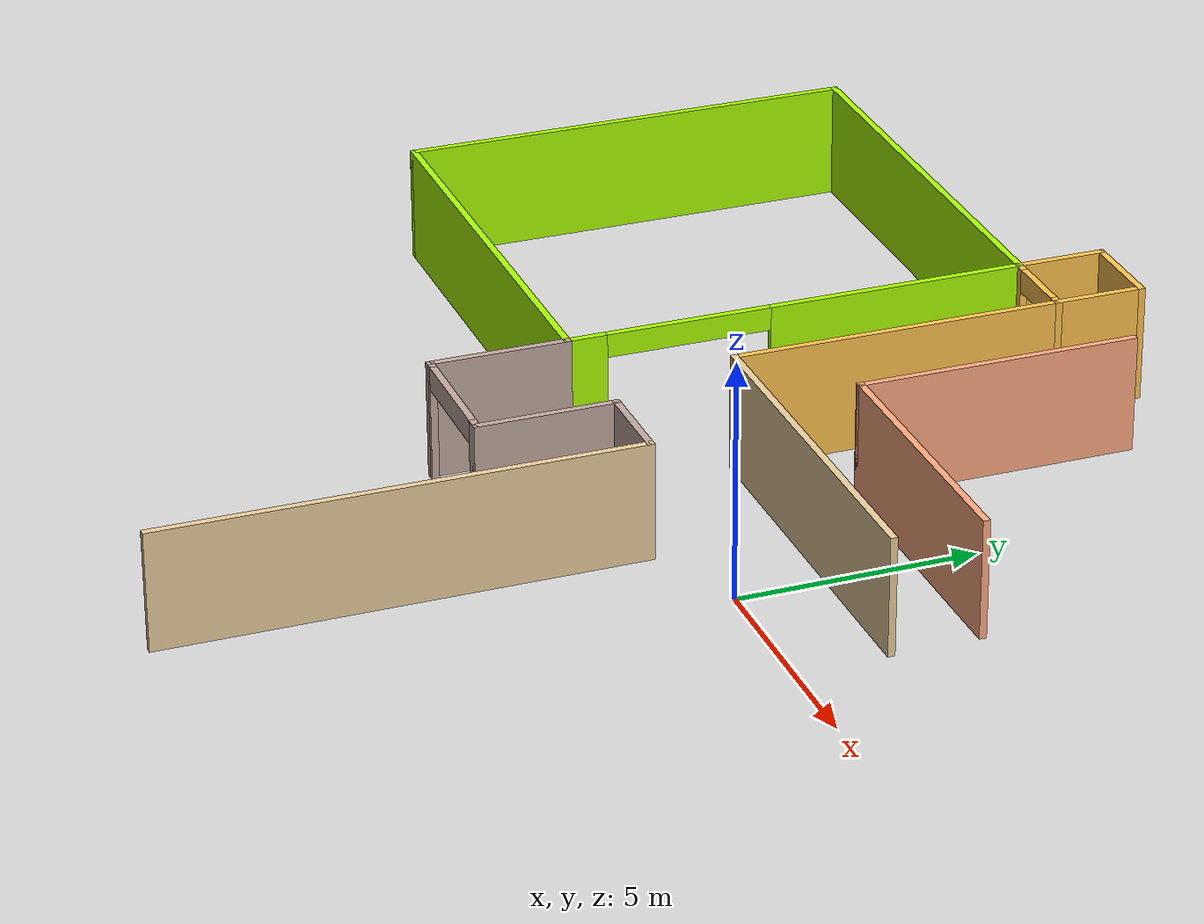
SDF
<sdf version="1.6">
 <model name="myhouse">
  <link name="Wall_24">
   <pose>-2.925 6.7 0 0 0 -1.5708</pose>
   <visual name="Wall_24_Visual">
    <pose>0 0 1.25 0 -0 0</pose>
    <geometry><box><size>6 0.15 2.5</size></box></geometry>
    <material>
     <script><uri>file://media/materials/scripts/gazebo.material</uri><name>Gazebo/Grey</name></script>
     <ambient>1 0.666667 0.498039 1</ambient>
     <diffuse>0.7 0.7 0.7 1</diffuse>
     <specular>0.01 0.01 0.01 1</specular>
     <emissive>0 0 0 1</emissive>
    </material>
   </visual>
   <collision name="Wall_24_Collision">
    <pose>0 0 1.25 0 -0 0</pose>
    <geometry><box><size>6 0.15 2.5</size></box></geometry>
    <surface>
     <friction>
      <ode><mu>1</mu><mu2>1</mu2><fdir1>0 0 0</fdir1><slip1>0</slip1><slip2>0</slip2></ode>
      <torsional>
       <coefficient>1</coefficient>
       <patch_radius>0</patch_radius>
       <surface_radius>0</surface_radius>
       <use_patch_radius>1</use_patch_radius>
       <ode><slip>0</slip></ode>
      </torsional>
     </friction>
     <bounce><restitution_coefficient>0</restitution_coefficient><threshold>1e+06</threshold></bounce>
     <contact>
      <collide_without_contact>0</collide_without_contact>
      <collide_without_contact_bitmask>1</collide_without_contact_bitmask>
      <collide_bitmask>1</collide_bitmask>
      <ode>
       <soft_cfm>0</soft_cfm>
       <soft_erp>0.2</soft_erp>
       <kp>1e+13</kp>
       <kd>1</kd>
       <max_vel>0.01</max_vel>
       <min_depth>0</min_depth>
      </ode>
      <bullet>
       <split_impulse>1</split_impulse>
       <split_impulse_penetration_threshold>-0.01</split_impulse_penetration_threshold>
       <soft_cfm>0</soft_cfm>
       <soft_erp>0.2</soft_erp>
       <kp>1e+13</kp>
       <kd>1</kd>
      </bullet>
     </contact>
    </surface>
   </collision>
  </link>
  <link name="Wall_25">
   <pose>0 3.775 0 0 -0 0</pose>
   <visual name="Wall_25_Visual">
    <pose>0 0 1.25 0 -0 0</pose>
    <geometry><box><size>6 0.15 2.5</size></box></geometry>
    <material>
     <script><uri>file://media/materials/scripts/gazebo.material</uri><name>Gazebo/Grey</name></script>
     <ambient>1 0.666667 0.498039 1</ambient>
     <diffuse>0.7 0.7 0.7 1</diffuse>
     <specular>0.01 0.01 0.01 1</specular>
     <emissive>0 0 0 1</emissive>
    </material>
   </visual>
   <collision name="Wall_25_Collision">
    <pose>0 0 1.25 0 -0 0</pose>
    <geometry><box><size>6 0.15 2.5</size></box></geometry>
    <surface>
     <friction>
      <ode><mu>1</mu><mu2>1</mu2><fdir1>0 0 0</fdir1><slip1>0</slip1><slip2>0</slip2></ode>
      <torsional>
       <coefficient>1</coefficient>
       <patch_radius>0</patch_radius>
       <surface_radius>0</surface_radius>
       <use_patch_radius>1</use_patch_radius>
       <ode><slip>0</slip></ode>
      </torsional>
     </friction>
     <bounce><restitution_coefficient>0</restitution_coefficient><threshold>1e+06</threshold></bounce>
     <contact>
      <collide_without_contact>0</collide_without_contact>
      <collide_without_contact_bitmask>1</collide_without_contact_bitmask>
      <collide_bitmask>1</collide_bitmask>
      <ode>
       <soft_cfm>0</soft_cfm>
       <soft_erp>0.2</soft_erp>
       <kp>1e+13</kp>
       <kd>1</kd>
       <max_vel>0.01</max_vel>
       <min_depth>0</min_depth>
      </ode>
      <bullet>
       <split_impulse>1</split_impulse>
       <split_impulse_penetration_threshold>-0.01</split_impulse_penetration_threshold>
       <soft_cfm>0</soft_cfm>
       <soft_erp>0.2</soft_erp>
       <kp>1e+13</kp>
       <kd>1</kd>
      </bullet>
     </contact>
    </surface>
   </collision>
  </link>
  <link name="Wall_27">
   <pose>-1 1.925 0 0 -0 3.14159</pose>
   <visual name="Wall_27_Visual">
    <pose>0 0 1.25 0 -0 0</pose>
    <geometry><box><size>8 0.15 2.5</size></box></geometry>
    <material>
     <script><uri>file://media/materials/scripts/gazebo.material</uri><name>Gazebo/Grey</name></script>
     <ambient>0.921569 0.807843 0.615686 1</ambient>
     <diffuse>0.7 0.7 0.7 1</diffuse>
     <specular>0.01 0.01 0.01 1</specular>
     <emissive>0 0 0 1</emissive>
    </material>
   </visual>
   <collision name="Wall_27_Collision">
    <pose>0 0 1.25 0 -0 0</pose>
    <geometry><box><size>8 0.15 2.5</size></box></geometry>
    <surface>
     <friction>
      <ode><mu>1</mu><mu2>1</mu2><fdir1>0 0 0</fdir1><slip1>0</slip1><slip2>0</slip2></ode>
      <torsional>
       <coefficient>1</coefficient>
       <patch_radius>0</patch_radius>
       <surface_radius>0</surface_radius>
       <use_patch_radius>1</use_patch_radius>
       <ode><slip>0</slip></ode>
      </torsional>
     </friction>
     <bounce><restitution_coefficient>0</restitution_coefficient><threshold>1e+06</threshold></bounce>
     <contact>
      <collide_without_contact>0</collide_without_contact>
      <collide_without_contact_bitmask>1</collide_without_contact_bitmask>
      <collide_bitmask>1</collide_bitmask>
      <ode>
       <soft_cfm>0</soft_cfm>
       <soft_erp>0.2</soft_erp>
       <kp>1e+13</kp>
       <kd>1</kd>
       <max_vel>0.01</max_vel>
       <min_depth>0</min_depth>
      </ode>
      <bullet>
       <split_impulse>1</split_impulse>
       <split_impulse_penetration_threshold>-0.01</split_impulse_penetration_threshold>
       <soft_cfm>0</soft_cfm>
       <soft_erp>0.2</soft_erp>
       <kp>1e+13</kp>
       <kd>1</kd>
      </bullet>
     </contact>
    </surface>
   </collision>
  </link>
  <link name="Wall_28">
   <pose>-4.925 6.35 0 0 -0 1.5708</pose>
   <visual name="Wall_28_Visual">
    <pose>0 0 1.25 0 -0 0</pose>
    <geometry><box><size>9 0.15 2.5</size></box></geometry>
    <material>
     <script><uri>file://media/materials/scripts/gazebo.material</uri><name>Gazebo/Grey</name></script>
     <ambient>1 0.764706 0.305882 1</ambient>
     <diffuse>0.7 0.7 0.7 1</diffuse>
     <specular>0.01 0.01 0.01 1</specular>
     <emissive>0 0 0 1</emissive>
    </material>
   </visual>
   <collision name="Wall_28_Collision">
    <pose>0 0 1.25 0 -0 0</pose>
    <geometry><box><size>9 0.15 2.5</size></box></geometry>
    <surface>
     <friction>
      <ode><mu>1</mu><mu2>1</mu2><fdir1>0 0 0</fdir1><slip1>0</slip1><slip2>0</slip2></ode>
      <torsional>
       <coefficient>1</coefficient>
       <patch_radius>0</patch_radius>
       <surface_radius>0</surface_radius>
       <use_patch_radius>1</use_patch_radius>
       <ode><slip>0</slip></ode>
      </torsional>
     </friction>
     <bounce><restitution_coefficient>0</restitution_coefficient><threshold>1e+06</threshold></bounce>
     <contact>
      <collide_without_contact>0</collide_without_contact>
      <collide_without_contact_bitmask>1</collide_without_contact_bitmask>
      <collide_bitmask>1</collide_bitmask>
      <ode>
       <soft_cfm>0</soft_cfm>
       <soft_erp>0.2</soft_erp>
       <kp>1e+13</kp>
       <kd>1</kd>
       <max_vel>0.01</max_vel>
       <min_depth>0</min_depth>
      </ode>
      <bullet>
       <split_impulse>1</split_impulse>
       <split_impulse_penetration_threshold>-0.01</split_impulse_penetration_threshold>
       <soft_cfm>0</soft_cfm>
       <soft_erp>0.2</soft_erp>
       <kp>1e+13</kp>
       <kd>1</kd>
      </bullet>
     </contact>
    </surface>
   </collision>
  </link>
  <link name="Wall_29">
   <pose>-5.85 10.775 0 0 -0 3.14159</pose>
   <visual name="Wall_29_Visual">
    <pose>0 0 1.25 0 -0 0</pose>
    <geometry><box><size>2 0.15 2.5</size></box></geometry>
    <material>
     <script><uri>file://media/materials/scripts/gazebo.material</uri><name>Gazebo/Grey</name></script>
     <ambient>1 0.764706 0.305882 1</ambient>
     <diffuse>0.7 0.7 0.7 1</diffuse>
     <specular>0.01 0.01 0.01 1</specular>
     <emissive>0 0 0 1</emissive>
    </material>
   </visual>
   <collision name="Wall_29_Collision">
    <pose>0 0 1.25 0 -0 0</pose>
    <geometry><box><size>2 0.15 2.5</size></box></geometry>
    <surface>
     <friction>
      <ode><mu>1</mu><mu2>1</mu2><fdir1>0 0 0</fdir1><slip1>0</slip1><slip2>0</slip2></ode>
      <torsional>
       <coefficient>1</coefficient>
       <patch_radius>0</patch_radius>
       <surface_radius>0</surface_radius>
       <use_patch_radius>1</use_patch_radius>
       <ode><slip>0</slip></ode>
      </torsional>
     </friction>
     <bounce><restitution_coefficient>0</restitution_coefficient><threshold>1e+06</threshold></bounce>
     <contact>
      <collide_without_contact>0</collide_without_contact>
      <collide_without_contact_bitmask>1</collide_without_contact_bitmask>
      <collide_bitmask>1</collide_bitmask>
      <ode>
       <soft_cfm>0</soft_cfm>
       <soft_erp>0.2</soft_erp>
       <kp>1e+13</kp>
       <kd>1</kd>
       <max_vel>0.01</max_vel>
       <min_depth>0</min_depth>
      </ode>
      <bullet>
       <split_impulse>1</split_impulse>
       <split_impulse_penetration_threshold>-0.01</split_impulse_penetration_threshold>
       <soft_cfm>0</soft_cfm>
       <soft_erp>0.2</soft_erp>
       <kp>1e+13</kp>
       <kd>1</kd>
      </bullet>
     </contact>
    </surface>
   </collision>
  </link>
  <link name="Wall_30">
   <pose>-6.775 9.85 0 0 0 -1.5708</pose>
   <visual name="Wall_30_Visual">
    <pose>0 0 1.25 0 -0 0</pose>
    <geometry><box><size>2 0.15 2.5</size></box></geometry>
    <material>
     <script><uri>file://media/materials/scripts/gazebo.material</uri><name>Gazebo/Grey</name></script>
     <ambient>1 0.764706 0.305882 1</ambient>
     <diffuse>0.7 0.7 0.7 1</diffuse>
     <specular>0.01 0.01 0.01 1</specular>
     <emissive>0 0 0 1</emissive>
    </material>
   </visual>
   <collision name="Wall_30_Collision">
    <pose>0 0 1.25 0 -0 0</pose>
    <geometry><box><size>2 0.15 2.5</size></box></geometry>
    <surface>
     <friction>
      <ode><mu>1</mu><mu2>1</mu2><fdir1>0 0 0</fdir1><slip1>0</slip1><slip2>0</slip2></ode>
      <torsional>
       <coefficient>1</coefficient>
       <patch_radius>0</patch_radius>
       <surface_radius>0</surface_radius>
       <use_patch_radius>1</use_patch_radius>
       <ode><slip>0</slip></ode>
      </torsional>
     </friction>
     <bounce><restitution_coefficient>0</restitution_coefficient><threshold>1e+06</threshold></bounce>
     <contact>
      <collide_without_contact>0</collide_without_contact>
      <collide_without_contact_bitmask>1</collide_without_contact_bitmask>
      <collide_bitmask>1</collide_bitmask>
      <ode>
       <soft_cfm>0</soft_cfm>
       <soft_erp>0.2</soft_erp>
       <kp>1e+13</kp>
       <kd>1</kd>
       <max_vel>0.01</max_vel>
       <min_depth>0</min_depth>
      </ode>
      <bullet>
       <split_impulse>1</split_impulse>
       <split_impulse_penetration_threshold>-0.01</split_impulse_penetration_threshold>
       <soft_cfm>0</soft_cfm>
       <soft_erp>0.2</soft_erp>
       <kp>1e+13</kp>
       <kd>1</kd>
      </bullet>
     </contact>
    </surface>
   </collision>
  </link>
  <link name="Wall_31">
   <pose>-11.7 8.925 0 0 -0 3.14159</pose>
   <visual name="Wall_31_Visual">
    <pose>0 0 1.25 0 -0 0</pose>
    <geometry><box><size>10 0.15 2.5</size></box></geometry>
    <material>
     <script><uri>file://media/materials/scripts/gazebo.material</uri><name>Gazebo/Grey</name></script>
     <ambient>0.666667 1 0 1</ambient>
     <diffuse>0.7 0.7 0.7 1</diffuse>
     <specular>0.01 0.01 0.01 1</specular>
     <emissive>0 0 0 1</emissive>
    </material>
   </visual>
   <collision name="Wall_31_Collision">
    <pose>0 0 1.25 0 -0 0</pose>
    <geometry><box><size>10 0.15 2.5</size></box></geometry>
    <surface>
     <friction>
      <ode><mu>1</mu><mu2>1</mu2><fdir1>0 0 0</fdir1><slip1>0</slip1><slip2>0</slip2></ode>
      <torsional>
       <coefficient>1</coefficient>
       <patch_radius>0</patch_radius>
       <surface_radius>0</surface_radius>
       <use_patch_radius>1</use_patch_radius>
       <ode><slip>0</slip></ode>
      </torsional>
     </friction>
     <bounce><restitution_coefficient>0</restitution_coefficient><threshold>1e+06</threshold></bounce>
     <contact>
      <collide_without_contact>0</collide_without_contact>
      <collide_without_contact_bitmask>1</collide_without_contact_bitmask>
      <collide_bitmask>1</collide_bitmask>
      <ode>
       <soft_cfm>0</soft_cfm>
       <soft_erp>0.2</soft_erp>
       <kp>1e+13</kp>
       <kd>1</kd>
       <max_vel>0.01</max_vel>
       <min_depth>0</min_depth>
      </ode>
      <bullet>
       <split_impulse>1</split_impulse>
       <split_impulse_penetration_threshold>-0.01</split_impulse_penetration_threshold>
       <soft_cfm>0</soft_cfm>
       <soft_erp>0.2</soft_erp>
       <kp>1e+13</kp>
       <kd>1</kd>
      </bullet>
     </contact>
    </surface>
   </collision>
  </link>
  <link name="Wall_32">
   <pose>-16.625 4 0 0 0 -1.5708</pose>
   <visual name="Wall_32_Visual">
    <pose>0 0 1.25 0 -0 0</pose>
    <geometry><box><size>10 0.15 2.5</size></box></geometry>
    <material>
     <script><uri>file://media/materials/scripts/gazebo.material</uri><name>Gazebo/Grey</name></script>
     <ambient>0.666667 1 0 1</ambient>
     <diffuse>0.7 0.7 0.7 1</diffuse>
     <specular>0.01 0.01 0.01 1</specular>
     <emissive>0 0 0 1</emissive>
    </material>
   </visual>
   <collision name="Wall_32_Collision">
    <pose>0 0 1.25 0 -0 0</pose>
    <geometry><box><size>10 0.15 2.5</size></box></geometry>
    <surface>
     <friction>
      <ode><mu>1</mu><mu2>1</mu2><fdir1>0 0 0</fdir1><slip1>0</slip1><slip2>0</slip2></ode>
      <torsional>
       <coefficient>1</coefficient>
       <patch_radius>0</patch_radius>
       <surface_radius>0</surface_radius>
       <use_patch_radius>1</use_patch_radius>
       <ode><slip>0</slip></ode>
      </torsional>
     </friction>
     <bounce><restitution_coefficient>0</restitution_coefficient><threshold>1e+06</threshold></bounce>
     <contact>
      <collide_without_contact>0</collide_without_contact>
      <collide_without_contact_bitmask>1</collide_without_contact_bitmask>
      <collide_bitmask>1</collide_bitmask>
      <ode>
       <soft_cfm>0</soft_cfm>
       <soft_erp>0.2</soft_erp>
       <kp>1e+13</kp>
       <kd>1</kd>
       <max_vel>0.01</max_vel>
       <min_depth>0</min_depth>
      </ode>
      <bullet>
       <split_impulse>1</split_impulse>
       <split_impulse_penetration_threshold>-0.01</split_impulse_penetration_threshold>
       <soft_cfm>0</soft_cfm>
       <soft_erp>0.2</soft_erp>
       <kp>1e+13</kp>
       <kd>1</kd>
      </bullet>
     </contact>
    </surface>
   </collision>
  </link>
  <link name="Wall_33">
   <pose>-11.7 -0.924999 0 0 -0 0</pose>
   <visual name="Wall_33_Visual">
    <pose>0 0 1.25 0 -0 0</pose>
    <geometry><box><size>10 0.15 2.5</size></box></geometry>
    <material>
     <script><uri>file://media/materials/scripts/gazebo.material</uri><name>Gazebo/Grey</name></script>
     <ambient>0.666667 1 0 1</ambient>
     <diffuse>0.7 0.7 0.7 1</diffuse>
     <specular>0.01 0.01 0.01 1</specular>
     <emissive>0 0 0 1</emissive>
    </material>
   </visual>
   <collision name="Wall_33_Collision">
    <pose>0 0 1.25 0 -0 0</pose>
    <geometry><box><size>10 0.15 2.5</size></box></geometry>
    <surface>
     <friction>
      <ode><mu>1</mu><mu2>1</mu2><fdir1>0 0 0</fdir1><slip1>0</slip1><slip2>0</slip2></ode>
      <torsional>
       <coefficient>1</coefficient>
       <patch_radius>0</patch_radius>
       <surface_radius>0</surface_radius>
       <use_patch_radius>1</use_patch_radius>
       <ode><slip>0</slip></ode>
      </torsional>
     </friction>
     <bounce><restitution_coefficient>0</restitution_coefficient><threshold>1e+06</threshold></bounce>
     <contact>
      <collide_without_contact>0</collide_without_contact>
      <collide_without_contact_bitmask>1</collide_without_contact_bitmask>
      <collide_bitmask>1</collide_bitmask>
      <ode>
       <soft_cfm>0</soft_cfm>
       <soft_erp>0.2</soft_erp>
       <kp>1e+13</kp>
       <kd>1</kd>
       <max_vel>0.01</max_vel>
       <min_depth>0</min_depth>
      </ode>
      <bullet>
       <split_impulse>1</split_impulse>
       <split_impulse_penetration_threshold>-0.01</split_impulse_penetration_threshold>
       <soft_cfm>0</soft_cfm>
       <soft_erp>0.2</soft_erp>
       <kp>1e+13</kp>
       <kd>1</kd>
      </bullet>
     </contact>
    </surface>
   </collision>
  </link>
  <link name="Wall_34">
   <pose>-6.775 -2.35 0 0 0 -1.5708</pose>
   <visual name="Wall_34_Visual">
    <pose>0 0 1.25 0 -0 0</pose>
    <geometry><box><size>3 0.15 2.5</size></box></geometry>
    <material>
     <script><uri>file://media/materials/scripts/gazebo.material</uri><name>Gazebo/Grey</name></script>
     <ambient>0.760784 0.662745 0.627451 1</ambient>
     <diffuse>0.7 0.7 0.7 1</diffuse>
     <specular>0.01 0.01 0.01 1</specular>
     <emissive>0 0 0 1</emissive>
    </material>
   </visual>
   <collision name="Wall_34_Collision">
    <pose>0 0 1.25 0 -0 0</pose>
    <geometry><box><size>3 0.15 2.5</size></box></geometry>
    <surface>
     <friction>
      <ode><mu>1</mu><mu2>1</mu2><fdir1>0 0 0</fdir1><slip1>0</slip1><slip2>0</slip2></ode>
      <torsional>
       <coefficient>1</coefficient>
       <patch_radius>0</patch_radius>
       <surface_radius>0</surface_radius>
       <use_patch_radius>1</use_patch_radius>
       <ode><slip>0</slip></ode>
      </torsional>
     </friction>
     <bounce><restitution_coefficient>0</restitution_coefficient><threshold>1e+06</threshold></bounce>
     <contact>
      <collide_without_contact>0</collide_without_contact>
      <collide_without_contact_bitmask>1</collide_without_contact_bitmask>
      <collide_bitmask>1</collide_bitmask>
      <ode>
       <soft_cfm>0</soft_cfm>
       <soft_erp>0.2</soft_erp>
       <kp>1e+13</kp>
       <kd>1</kd>
       <max_vel>0.01</max_vel>
       <min_depth>0</min_depth>
      </ode>
      <bullet>
       <split_impulse>1</split_impulse>
       <split_impulse_penetration_threshold>-0.01</split_impulse_penetration_threshold>
       <soft_cfm>0</soft_cfm>
       <soft_erp>0.2</soft_erp>
       <kp>1e+13</kp>
       <kd>1</kd>
      </bullet>
     </contact>
    </surface>
   </collision>
  </link>
  <link name="Wall_35">
   <pose>-5.35 -3.775 0 0 -0 0</pose>
   <visual name="Wall_35_Visual_0">
    <pose>-1.3701 0 1.25 0 -0 0</pose>
    <geometry><box><size>0.259804 0.15 2.5</size></box></geometry>
    <material>
     <script><uri>file://media/materials/scripts/gazebo.material</uri><name>Gazebo/Grey</name></script>
     <ambient>0.760784 0.662745 0.627451 1</ambient>
     <diffuse>0.7 0.7 0.7 1</diffuse>
     <specular>0.01 0.01 0.01 1</specular>
     <emissive>0 0 0 1</emissive>
    </material>
   </visual>
   <visual name="Wall_35_Visual_1">
    <pose>1.33743 0 1.25 0 -0 0</pose>
    <geometry><box><size>0.325141 0.15 2.5</size></box></geometry>
    <material>
     <script><uri>file://media/materials/scripts/gazebo.material</uri><name>Gazebo/Grey</name></script>
     <ambient>0.760784 0.662745 0.627451 1</ambient>
     <diffuse>0.7 0.7 0.7 1</diffuse>
     <specular>0.01 0.01 0.01 1</specular>
     <emissive>0 0 0 1</emissive>
    </material>
   </visual>
   <visual name="Wall_35_Visual_2">
    <pose>-0.032669 0 2.25 0 -0 0</pose>
    <geometry><box><size>2.41506 0.15 0.5</size></box></geometry>
    <material>
     <script><uri>file://media/materials/scripts/gazebo.material</uri><name>Gazebo/Grey</name></script>
     <ambient>0.760784 0.662745 0.627451 1</ambient>
     <diffuse>0.7 0.7 0.7 1</diffuse>
     <specular>0.01 0.01 0.01 1</specular>
     <emissive>0 0 0 1</emissive>
    </material>
   </visual>
   <collision name="Wall_35_Collision_0">
    <pose>-1.3701 0 1.25 0 -0 0</pose>
    <geometry><box><size>0.259804 0.15 2.5</size></box></geometry>
    <surface>
     <friction>
      <ode><mu>1</mu><mu2>1</mu2><fdir1>0 0 0</fdir1><slip1>0</slip1><slip2>0</slip2></ode>
      <torsional>
       <coefficient>1</coefficient>
       <patch_radius>0</patch_radius>
       <surface_radius>0</surface_radius>
       <use_patch_radius>1</use_patch_radius>
       <ode><slip>0</slip></ode>
      </torsional>
     </friction>
     <bounce><restitution_coefficient>0</restitution_coefficient><threshold>1e+06</threshold></bounce>
     <contact>
      <collide_without_contact>0</collide_without_contact>
      <collide_without_contact_bitmask>1</collide_without_contact_bitmask>
      <collide_bitmask>1</collide_bitmask>
      <ode>
       <soft_cfm>0</soft_cfm>
       <soft_erp>0.2</soft_erp>
       <kp>1e+13</kp>
       <kd>1</kd>
       <max_vel>0.01</max_vel>
       <min_depth>0</min_depth>
      </ode>
      <bullet>
       <split_impulse>1</split_impulse>
       <split_impulse_penetration_threshold>-0.01</split_impulse_penetration_threshold>
       <soft_cfm>0</soft_cfm>
       <soft_erp>0.2</soft_erp>
       <kp>1e+13</kp>
       <kd>1</kd>
      </bullet>
     </contact>
    </surface>
   </collision>
   <collision name="Wall_35_Collision_1">
    <pose>1.33743 0 1.25 0 -0 0</pose>
    <geometry><box><size>0.325141 0.15 2.5</size></box></geometry>
    <surface>
     <friction>
      <ode><mu>1</mu><mu2>1</mu2><fdir1>0 0 0</fdir1><slip1>0</slip1><slip2>0</slip2></ode>
      <torsional>
       <coefficient>1</coefficient>
       <patch_radius>0</patch_radius>
       <surface_radius>0</surface_radius>
       <use_patch_radius>1</use_patch_radius>
       <ode><slip>0</slip></ode>
      </torsional>
     </friction>
     <bounce><restitution_coefficient>0</restitution_coefficient><threshold>1e+06</threshold></bounce>
     <contact>
      <collide_without_contact>0</collide_without_contact>
      <collide_without_contact_bitmask>1</collide_without_contact_bitmask>
      <collide_bitmask>1</collide_bitmask>
      <ode>
       <soft_cfm>0</soft_cfm>
       <soft_erp>0.2</soft_erp>
       <kp>1e+13</kp>
       <kd>1</kd>
       <max_vel>0.01</max_vel>
       <min_depth>0</min_depth>
      </ode>
      <bullet>
       <split_impulse>1</split_impulse>
       <split_impulse_penetration_threshold>-0.01</split_impulse_penetration_threshold>
       <soft_cfm>0</soft_cfm>
       <soft_erp>0.2</soft_erp>
       <kp>1e+13</kp>
       <kd>1</kd>
      </bullet>
     </contact>
    </surface>
   </collision>
   <collision name="Wall_35_Collision_2">
    <pose>-0.032669 0 2.25 0 -0 0</pose>
    <geometry><box><size>2.41506 0.15 0.5</size></box></geometry>
    <surface>
     <friction>
      <ode><mu>1</mu><mu2>1</mu2><fdir1>0 0 0</fdir1><slip1>0</slip1><slip2>0</slip2></ode>
      <torsional>
       <coefficient>1</coefficient>
       <patch_radius>0</patch_radius>
       <surface_radius>0</surface_radius>
       <use_patch_radius>1</use_patch_radius>
       <ode><slip>0</slip></ode>
      </torsional>
     </friction>
     <bounce><restitution_coefficient>0</restitution_coefficient><threshold>1e+06</threshold></bounce>
     <contact>
      <collide_without_contact>0</collide_without_contact>
      <collide_without_contact_bitmask>1</collide_without_contact_bitmask>
      <collide_bitmask>1</collide_bitmask>
      <ode>
       <soft_cfm>0</soft_cfm>
       <soft_erp>0.2</soft_erp>
       <kp>1e+13</kp>
       <kd>1</kd>
       <max_vel>0.01</max_vel>
       <min_depth>0</min_depth>
      </ode>
      <bullet>
       <split_impulse>1</split_impulse>
       <split_impulse_penetration_threshold>-0.01</split_impulse_penetration_threshold>
       <soft_cfm>0</soft_cfm>
       <soft_erp>0.2</soft_erp>
       <kp>1e+13</kp>
       <kd>1</kd>
      </bullet>
     </contact>
    </surface>
   </collision>
  </link>
  <link name="Wall_36">
   <pose>-3.925 -2.35 0 0 -0 1.5708</pose>
   <visual name="Wall_36_Visual">
    <pose>0 0 1.25 0 -0 0</pose>
    <geometry><box><size>3 0.15 2.5</size></box></geometry>
    <material>
     <script><uri>file://media/materials/scripts/gazebo.material</uri><name>Gazebo/Grey</name></script>
     <ambient>0.760784 0.662745 0.627451 1</ambient>
     <diffuse>0.7 0.7 0.7 1</diffuse>
     <specular>0.01 0.01 0.01 1</specular>
     <emissive>0 0 0 1</emissive>
    </material>
   </visual>
   <collision name="Wall_36_Collision">
    <pose>0 0 1.25 0 -0 0</pose>
    <geometry><box><size>3 0.15 2.5</size></box></geometry>
    <surface>
     <friction>
      <ode><mu>1</mu><mu2>1</mu2><fdir1>0 0 0</fdir1><slip1>0</slip1><slip2>0</slip2></ode>
      <torsional>
       <coefficient>1</coefficient>
       <patch_radius>0</patch_radius>
       <surface_radius>0</surface_radius>
       <use_patch_radius>1</use_patch_radius>
       <ode><slip>0</slip></ode>
      </torsional>
     </friction>
     <bounce><restitution_coefficient>0</restitution_coefficient><threshold>1e+06</threshold></bounce>
     <contact>
      <collide_without_contact>0</collide_without_contact>
      <collide_without_contact_bitmask>1</collide_without_contact_bitmask>
      <collide_bitmask>1</collide_bitmask>
      <ode>
       <soft_cfm>0</soft_cfm>
       <soft_erp>0.2</soft_erp>
       <kp>1e+13</kp>
       <kd>1</kd>
       <max_vel>0.01</max_vel>
       <min_depth>0</min_depth>
      </ode>
      <bullet>
       <split_impulse>1</split_impulse>
       <split_impulse_penetration_threshold>-0.01</split_impulse_penetration_threshold>
       <soft_cfm>0</soft_cfm>
       <soft_erp>0.2</soft_erp>
       <kp>1e+13</kp>
       <kd>1</kd>
      </bullet>
     </contact>
    </surface>
   </collision>
  </link>
  <link name="Wall_37">
   <pose>-3 -0.924999 0 0 -0 0</pose>
   <visual name="Wall_37_Visual">
    <pose>0 0 1.25 0 -0 0</pose>
    <geometry><box><size>2 0.15 2.5</size></box></geometry>
    <material>
     <script><uri>file://media/materials/scripts/gazebo.material</uri><name>Gazebo/Grey</name></script>
     <ambient>0.760784 0.662745 0.627451 1</ambient>
     <diffuse>0.7 0.7 0.7 1</diffuse>
     <specular>0.01 0.01 0.01 1</specular>
     <emissive>0 0 0 1</emissive>
    </material>
   </visual>
   <collision name="Wall_37_Collision">
    <pose>0 0 1.25 0 -0 0</pose>
    <geometry><box><size>2 0.15 2.5</size></box></geometry>
    <surface>
     <friction>
      <ode><mu>1</mu><mu2>1</mu2><fdir1>0 0 0</fdir1><slip1>0</slip1><slip2>0</slip2></ode>
      <torsional>
       <coefficient>1</coefficient>
       <patch_radius>0</patch_radius>
       <surface_radius>0</surface_radius>
       <use_patch_radius>1</use_patch_radius>
       <ode><slip>0</slip></ode>
      </torsional>
     </friction>
     <bounce><restitution_coefficient>0</restitution_coefficient><threshold>1e+06</threshold></bounce>
     <contact>
      <collide_without_contact>0</collide_without_contact>
      <collide_without_contact_bitmask>1</collide_without_contact_bitmask>
      <collide_bitmask>1</collide_bitmask>
      <ode>
       <soft_cfm>0</soft_cfm>
       <soft_erp>0.2</soft_erp>
       <kp>1e+13</kp>
       <kd>1</kd>
       <max_vel>0.01</max_vel>
       <min_depth>0</min_depth>
      </ode>
      <bullet>
       <split_impulse>1</split_impulse>
       <split_impulse_penetration_threshold>-0.01</split_impulse_penetration_threshold>
       <soft_cfm>0</soft_cfm>
       <soft_erp>0.2</soft_erp>
       <kp>1e+13</kp>
       <kd>1</kd>
      </bullet>
     </contact>
    </surface>
   </collision>
  </link>
  <link name="Wall_42">
   <pose>-2.075 -5.85 0 0 0 -1.5708</pose>
   <visual name="Wall_42_Visual">
    <pose>0 0 1.25 0 -0 0</pose>
    <geometry><box><size>10 0.15 2.5</size></box></geometry>
    <material>
     <script><uri>file://media/materials/scripts/gazebo.material</uri><name>Gazebo/Grey</name></script>
     <ambient>0.921569 0.807843 0.615686 1</ambient>
     <diffuse>0.7 0.7 0.7 1</diffuse>
     <specular>0.01 0.01 0.01 1</specular>
     <emissive>0 0 0 1</emissive>
    </material>
   </visual>
   <collision name="Wall_42_Collision">
    <pose>0 0 1.25 0 -0 0</pose>
    <geometry><box><size>10 0.15 2.5</size></box></geometry>
    <surface>
     <friction>
      <ode><mu>1</mu><mu2>1</mu2><fdir1>0 0 0</fdir1><slip1>0</slip1><slip2>0</slip2></ode>
      <torsional>
       <coefficient>1</coefficient>
       <patch_radius>0</patch_radius>
       <surface_radius>0</surface_radius>
       <use_patch_radius>1</use_patch_radius>
       <ode><slip>0</slip></ode>
      </torsional>
     </friction>
     <bounce><restitution_coefficient>0</restitution_coefficient><threshold>1e+06</threshold></bounce>
     <contact>
      <collide_without_contact>0</collide_without_contact>
      <collide_without_contact_bitmask>1</collide_without_contact_bitmask>
      <collide_bitmask>1</collide_bitmask>
      <ode>
       <soft_cfm>0</soft_cfm>
       <soft_erp>0.2</soft_erp>
       <kp>1e+13</kp>
       <kd>1</kd>
       <max_vel>0.01</max_vel>
       <min_depth>0</min_depth>
      </ode>
      <bullet>
       <split_impulse>1</split_impulse>
       <split_impulse_penetration_threshold>-0.01</split_impulse_penetration_threshold>
       <soft_cfm>0</soft_cfm>
       <soft_erp>0.2</soft_erp>
       <kp>1e+13</kp>
       <kd>1</kd>
      </bullet>
     </contact>
    </surface>
   </collision>
  </link>
  <link name="Wall_46">
   <pose>-6.775 4 0 0 0 -1.5708</pose>
   <visual name="Wall_46_Visual_0">
    <pose>-2.20451 0 1.25 0 -0 0</pose>
    <geometry><box><size>5.59098 0.15 2.5</size></box></geometry>
    <material>
     <script><uri>file://media/materials/scripts/gazebo.material</uri><name>Gazebo/Grey</name></script>
     <ambient>0.666667 1 0 1</ambient>
     <diffuse>0.7 0.7 0.7 1</diffuse>
     <specular>0.01 0.01 0.01 1</specular>
     <emissive>0 0 0 1</emissive>
    </material>
   </visual>
   <visual name="Wall_46_Visual_1">
    <pose>4.5489 0 1.25 0 -0 0</pose>
    <geometry><box><size>0.902202 0.15 2.5</size></box></geometry>
    <material>
     <script><uri>file://media/materials/scripts/gazebo.material</uri><name>Gazebo/Grey</name></script>
     <ambient>0.666667 1 0 1</ambient>
     <diffuse>0.7 0.7 0.7 1</diffuse>
     <specular>0.01 0.01 0.01 1</specular>
     <emissive>0 0 0 1</emissive>
    </material>
   </visual>
   <visual name="Wall_46_Visual_2">
    <pose>2.34439 0 2.25 0 -0 0</pose>
    <geometry><box><size>3.50682 0.15 0.5</size></box></geometry>
    <material>
     <script><uri>file://media/materials/scripts/gazebo.material</uri><name>Gazebo/Grey</name></script>
     <ambient>0.666667 1 0 1</ambient>
     <diffuse>0.7 0.7 0.7 1</diffuse>
     <specular>0.01 0.01 0.01 1</specular>
     <emissive>0 0 0 1</emissive>
    </material>
   </visual>
   <collision name="Wall_46_Collision_0">
    <pose>-2.20451 0 1.25 0 -0 0</pose>
    <geometry><box><size>5.59098 0.15 2.5</size></box></geometry>
    <surface>
     <friction>
      <ode><mu>1</mu><mu2>1</mu2><fdir1>0 0 0</fdir1><slip1>0</slip1><slip2>0</slip2></ode>
      <torsional>
       <coefficient>1</coefficient>
       <patch_radius>0</patch_radius>
       <surface_radius>0</surface_radius>
       <use_patch_radius>1</use_patch_radius>
       <ode><slip>0</slip></ode>
      </torsional>
     </friction>
     <bounce><restitution_coefficient>0</restitution_coefficient><threshold>1e+06</threshold></bounce>
     <contact>
      <collide_without_contact>0</collide_without_contact>
      <collide_without_contact_bitmask>1</collide_without_contact_bitmask>
      <collide_bitmask>1</collide_bitmask>
      <ode>
       <soft_cfm>0</soft_cfm>
       <soft_erp>0.2</soft_erp>
       <kp>1e+13</kp>
       <kd>1</kd>
       <max_vel>0.01</max_vel>
       <min_depth>0</min_depth>
      </ode>
      <bullet>
       <split_impulse>1</split_impulse>
       <split_impulse_penetration_threshold>-0.01</split_impulse_penetration_threshold>
       <soft_cfm>0</soft_cfm>
       <soft_erp>0.2</soft_erp>
       <kp>1e+13</kp>
       <kd>1</kd>
      </bullet>
     </contact>
    </surface>
   </collision>
   <collision name="Wall_46_Collision_1">
    <pose>4.5489 0 1.25 0 -0 0</pose>
    <geometry><box><size>0.902202 0.15 2.5</size></box></geometry>
    <surface>
     <friction>
      <ode><mu>1</mu><mu2>1</mu2><fdir1>0 0 0</fdir1><slip1>0</slip1><slip2>0</slip2></ode>
      <torsional>
       <coefficient>1</coefficient>
       <patch_radius>0</patch_radius>
       <surface_radius>0</surface_radius>
       <use_patch_radius>1</use_patch_radius>
       <ode><slip>0</slip></ode>
      </torsional>
     </friction>
     <bounce><restitution_coefficient>0</restitution_coefficient><threshold>1e+06</threshold></bounce>
     <contact>
      <collide_without_contact>0</collide_without_contact>
      <collide_without_contact_bitmask>1</collide_without_contact_bitmask>
      <collide_bitmask>1</collide_bitmask>
      <ode>
       <soft_cfm>0</soft_cfm>
       <soft_erp>0.2</soft_erp>
       <kp>1e+13</kp>
       <kd>1</kd>
       <max_vel>0.01</max_vel>
       <min_depth>0</min_depth>
      </ode>
      <bullet>
       <split_impulse>1</split_impulse>
       <split_impulse_penetration_threshold>-0.01</split_impulse_penetration_threshold>
       <soft_cfm>0</soft_cfm>
       <soft_erp>0.2</soft_erp>
       <kp>1e+13</kp>
       <kd>1</kd>
      </bullet>
     </contact>
    </surface>
   </collision>
   <collision name="Wall_46_Collision_2">
    <pose>2.34439 0 2.25 0 -0 0</pose>
    <geometry><box><size>3.50682 0.15 0.5</size></box></geometry>
    <surface>
     <friction>
      <ode><mu>1</mu><mu2>1</mu2><fdir1>0 0 0</fdir1><slip1>0</slip1><slip2>0</slip2></ode>
      <torsional>
       <coefficient>1</coefficient>
       <patch_radius>0</patch_radius>
       <surface_radius>0</surface_radius>
       <use_patch_radius>1</use_patch_radius>
       <ode><slip>0</slip></ode>
      </torsional>
     </friction>
     <bounce><restitution_coefficient>0</restitution_coefficient><threshold>1e+06</threshold></bounce>
     <contact>
      <collide_without_contact>0</collide_without_contact>
      <collide_without_contact_bitmask>1</collide_without_contact_bitmask>
      <collide_bitmask>1</collide_bitmask>
      <ode>
       <soft_cfm>0</soft_cfm>
       <soft_erp>0.2</soft_erp>
       <kp>1e+13</kp>
       <kd>1</kd>
       <max_vel>0.01</max_vel>
       <min_depth>0</min_depth>
      </ode>
      <bullet>
       <split_impulse>1</split_impulse>
       <split_impulse_penetration_threshold>-0.01</split_impulse_penetration_threshold>
       <soft_cfm>0</soft_cfm>
       <soft_erp>0.2</soft_erp>
       <kp>1e+13</kp>
       <kd>1</kd>
      </bullet>
     </contact>
    </surface>
   </collision>
  </link>
  <link name="Wall_54">
   <pose>-5.85 8.925 0 0 -0 0</pose>
   <visual name="Wall_54_Visual_0">
    <pose>-0.84004 0 1.25 0 -0 0</pose>
    <geometry><box><size>0.319921 0.15 2.5</size></box></geometry>
    <material>
     <script><uri>file://media/materials/scripts/gazebo.material</uri><name>Gazebo/Grey</name></script>
     <ambient>1 0.764706 0.305882 1</ambient>
     <diffuse>0.7 0.7 0.7 1</diffuse>
     <specular>0.01 0.01 0.01 1</specular>
     <emissive>0 0 0 1</emissive>
    </material>
   </visual>
   <visual name="Wall_54_Visual_1">
    <pose>0.862662 0 1.25 0 -0 0</pose>
    <geometry><box><size>0.274676 0.15 2.5</size></box></geometry>
    <material>
     <script><uri>file://media/materials/scripts/gazebo.material</uri><name>Gazebo/Grey</name></script>
     <ambient>1 0.764706 0.305882 1</ambient>
     <diffuse>0.7 0.7 0.7 1</diffuse>
     <specular>0.01 0.01 0.01 1</specular>
     <emissive>0 0 0 1</emissive>
    </material>
   </visual>
   <visual name="Wall_54_Visual_2">
    <pose>0.022623 0 2.25 0 -0 0</pose>
    <geometry><box><size>1.4054 0.15 0.5</size></box></geometry>
    <material>
     <script><uri>file://media/materials/scripts/gazebo.material</uri><name>Gazebo/Grey</name></script>
     <ambient>1 0.764706 0.305882 1</ambient>
     <diffuse>0.7 0.7 0.7 1</diffuse>
     <specular>0.01 0.01 0.01 1</specular>
     <emissive>0 0 0 1</emissive>
    </material>
   </visual>
   <collision name="Wall_54_Collision_0">
    <pose>-0.84004 0 1.25 0 -0 0</pose>
    <geometry><box><size>0.319921 0.15 2.5</size></box></geometry>
    <surface>
     <friction>
      <ode><mu>1</mu><mu2>1</mu2><fdir1>0 0 0</fdir1><slip1>0</slip1><slip2>0</slip2></ode>
      <torsional>
       <coefficient>1</coefficient>
       <patch_radius>0</patch_radius>
       <surface_radius>0</surface_radius>
       <use_patch_radius>1</use_patch_radius>
       <ode><slip>0</slip></ode>
      </torsional>
     </friction>
     <bounce><restitution_coefficient>0</restitution_coefficient><threshold>1e+06</threshold></bounce>
     <contact>
      <collide_without_contact>0</collide_without_contact>
      <collide_without_contact_bitmask>1</collide_without_contact_bitmask>
      <collide_bitmask>1</collide_bitmask>
      <ode>
       <soft_cfm>0</soft_cfm>
       <soft_erp>0.2</soft_erp>
       <kp>1e+13</kp>
       <kd>1</kd>
       <max_vel>0.01</max_vel>
       <min_depth>0</min_depth>
      </ode>
      <bullet>
       <split_impulse>1</split_impulse>
       <split_impulse_penetration_threshold>-0.01</split_impulse_penetration_threshold>
       <soft_cfm>0</soft_cfm>
       <soft_erp>0.2</soft_erp>
       <kp>1e+13</kp>
       <kd>1</kd>
      </bullet>
     </contact>
    </surface>
   </collision>
   <collision name="Wall_54_Collision_1">
    <pose>0.862662 0 1.25 0 -0 0</pose>
    <geometry><box><size>0.274676 0.15 2.5</size></box></geometry>
    <surface>
     <friction>
      <ode><mu>1</mu><mu2>1</mu2><fdir1>0 0 0</fdir1><slip1>0</slip1><slip2>0</slip2></ode>
      <torsional>
       <coefficient>1</coefficient>
       <patch_radius>0</patch_radius>
       <surface_radius>0</surface_radius>
       <use_patch_radius>1</use_patch_radius>
       <ode><slip>0</slip></ode>
      </torsional>
     </friction>
     <bounce><restitution_coefficient>0</restitution_coefficient><threshold>1e+06</threshold></bounce>
     <contact>
      <collide_without_contact>0</collide_without_contact>
      <collide_without_contact_bitmask>1</collide_without_contact_bitmask>
      <collide_bitmask>1</collide_bitmask>
      <ode>
       <soft_cfm>0</soft_cfm>
       <soft_erp>0.2</soft_erp>
       <kp>1e+13</kp>
       <kd>1</kd>
       <max_vel>0.01</max_vel>
       <min_depth>0</min_depth>
      </ode>
      <bullet>
       <split_impulse>1</split_impulse>
       <split_impulse_penetration_threshold>-0.01</split_impulse_penetration_threshold>
       <soft_cfm>0</soft_cfm>
       <soft_erp>0.2</soft_erp>
       <kp>1e+13</kp>
       <kd>1</kd>
      </bullet>
     </contact>
    </surface>
   </collision>
   <collision name="Wall_54_Collision_2">
    <pose>0.022623 0 2.25 0 -0 0</pose>
    <geometry><box><size>1.4054 0.15 0.5</size></box></geometry>
    <surface>
     <friction>
      <ode><mu>1</mu><mu2>1</mu2><fdir1>0 0 0</fdir1><slip1>0</slip1><slip2>0</slip2></ode>
      <torsional>
       <coefficient>1</coefficient>
       <patch_radius>0</patch_radius>
       <surface_radius>0</surface_radius>
       <use_patch_radius>1</use_patch_radius>
       <ode><slip>0</slip></ode>
      </torsional>
     </friction>
     <bounce><restitution_coefficient>0</restitution_coefficient><threshold>1e+06</threshold></bounce>
     <contact>
      <collide_without_contact>0</collide_without_contact>
      <collide_without_contact_bitmask>1</collide_without_contact_bitmask>
      <collide_bitmask>1</collide_bitmask>
      <ode>
       <soft_cfm>0</soft_cfm>
       <soft_erp>0.2</soft_erp>
       <kp>1e+13</kp>
       <kd>1</kd>
       <max_vel>0.01</max_vel>
       <min_depth>0</min_depth>
      </ode>
      <bullet>
       <split_impulse>1</split_impulse>
       <split_impulse_penetration_threshold>-0.01</split_impulse_penetration_threshold>
       <soft_cfm>0</soft_cfm>
       <soft_erp>0.2</soft_erp>
       <kp>1e+13</kp>
       <kd>1</kd>
      </bullet>
     </contact>
    </surface>
   </collision>
  </link>
  <static>1</static>
 </model>
</sdf>
